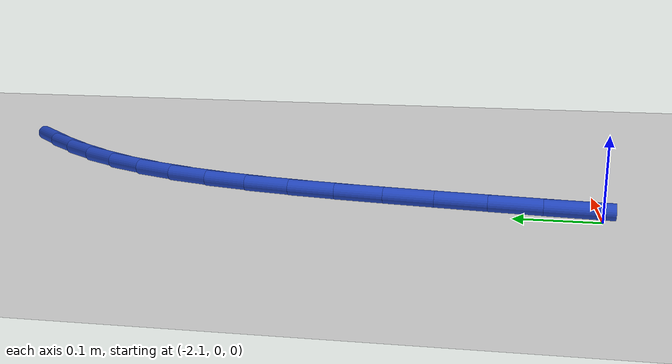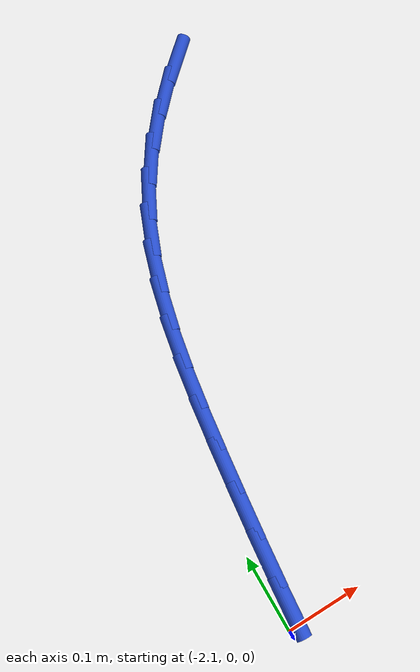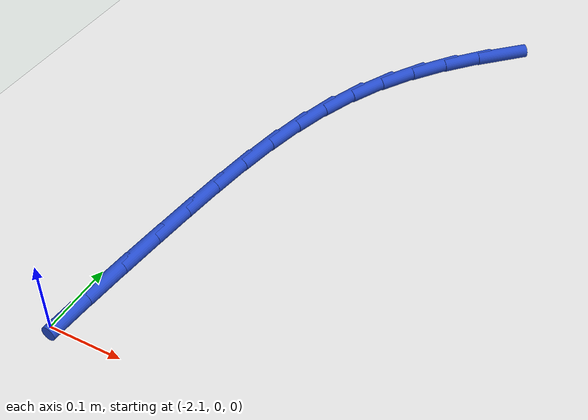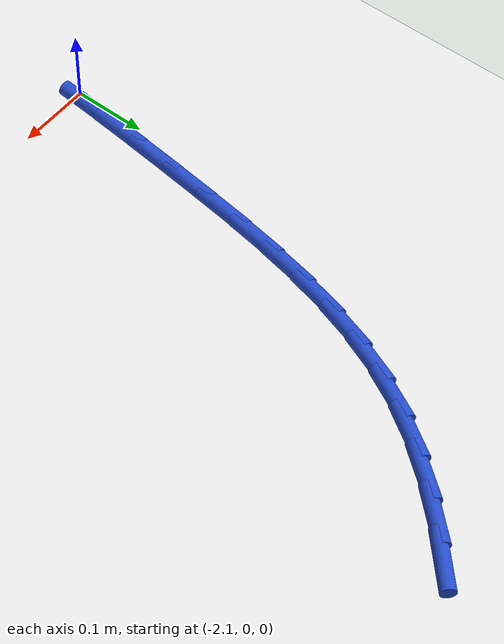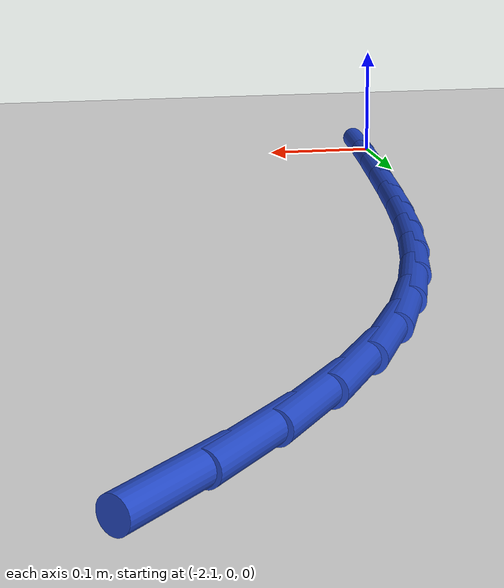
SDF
<sdf version="1.6">
 <world name="default">
  <model name="ground_plane">
   <static>1</static>
   <link name="link">
    <collision name="collision">
     <geometry><plane><normal>0 0 1</normal><size>100 100</size></plane></geometry>
     <surface><friction><ode><mu>100</mu><mu2>50</mu2></ode></friction></surface>
    </collision>
    <visual name="visual">
     <cast_shadows>0</cast_shadows>
     <geometry><plane><normal>0 0 1</normal><size>100 100</size></plane></geometry>
     <material>
      <script><uri>file://media/materials/scripts/gazebo.material</uri><name>Gazebo/WhiteGlow</name></script>
     </material>
    </visual>
   </link>
  </model>
  <model name="line">
   <link name="link_46">
    <pose>-1.8274480297276543 0.7579894274599085 0.01 0 1.57 0.7655861449692442</pose>
    <collision name="collision">
     <geometry><cylinder><radius>0.01</radius><length>0.08</length></cylinder></geometry>
    </collision>
    <visual name="visual">
     <material>
      <script><name>Gazebo/Blue</name><uri>file://media/materials/scripts/gazebo.material</uri></script>
     </material>
     <geometry><cylinder><radius>0.01</radius><length>0.08</length></cylinder></geometry>
    </visual>
   </link>
   <link name="link_47">
    <pose>-1.8681661808079115 0.7188535528368503 0.01 0 1.57 0.8355588054004156</pose>
    <collision name="collision">
     <geometry><cylinder><radius>0.01</radius><length>0.08</length></cylinder></geometry>
    </collision>
    <visual name="visual">
     <material>
      <script><name>Gazebo/Blue</name><uri>file://media/materials/scripts/gazebo.material</uri></script>
     </material>
     <geometry><cylinder><radius>0.01</radius><length>0.08</length></cylinder></geometry>
    </visual>
   </link>
   <link name="link_48">
    <pose>-1.9054464520120367 0.6776322883518419 0.01 0 1.57 0.9158189596621361</pose>
    <collision name="collision">
     <geometry><cylinder><radius>0.01</radius><length>0.08</length></cylinder></geometry>
    </collision>
    <visual name="visual">
     <material>
      <script><name>Gazebo/Blue</name><uri>file://media/materials/scripts/gazebo.material</uri></script>
     </material>
     <geometry><cylinder><radius>0.01</radius><length>0.08</length></cylinder></geometry>
    </visual>
   </link>
   <link name="link_49">
    <pose>-1.938792085375429 0.6342184770884384 0.01 0 1.57 1.0068150586327034</pose>
    <collision name="collision">
     <geometry><cylinder><radius>0.01</radius><length>0.08</length></cylinder></geometry>
    </collision>
    <visual name="visual">
     <material>
      <script><name>Gazebo/Blue</name><uri>file://media/materials/scripts/gazebo.material</uri></script>
     </material>
     <geometry><cylinder><radius>0.01</radius><length>0.08</length></cylinder></geometry>
    </visual>
   </link>
   <link name="link_50">
    <pose>-1.967706322933489 0.5885049621301943 0.01 0 1.57 1.1063465908723535</pose>
    <collision name="collision">
     <geometry><cylinder><radius>0.01</radius><length>0.08</length></cylinder></geometry>
    </collision>
    <visual name="visual">
     <material>
      <script><name>Gazebo/Blue</name><uri>file://media/materials/scripts/gazebo.material</uri></script>
     </material>
     <geometry><cylinder><radius>0.01</radius><length>0.08</length></cylinder></geometry>
    </visual>
   </link>
   <link name="link_51">
    <pose>-1.9918020110914298 0.5404100700506449 0.01 0 1.57 1.1992154726990087</pose>
    <collision name="collision">
     <geometry><cylinder><radius>0.01</radius><length>0.08</length></cylinder></geometry>
    </collision>
    <visual name="visual">
     <material>
      <script><name>Gazebo/Blue</name><uri>file://media/materials/scripts/gazebo.material</uri></script>
     </material>
     <geometry><cylinder><radius>0.01</radius><length>0.08</length></cylinder></geometry>
    </visual>
   </link>
   <link name="link_52">
    <pose>-2.0114361563713583 0.4900251478687182 0.01 0 1.57 1.2778464284739512</pose>
    <collision name="collision">
     <geometry><cylinder><radius>0.01</radius><length>0.08</length></cylinder></geometry>
    </collision>
    <visual name="visual">
     <material>
      <script><name>Gazebo/Blue</name><uri>file://media/materials/scripts/gazebo.material</uri></script>
     </material>
     <geometry><cylinder><radius>0.01</radius><length>0.08</length></cylinder></geometry>
    </visual>
   </link>
   <link name="link_53">
    <pose>-2.0272751576547345 0.4375134776648998 0.01 0 1.57 1.3415564436243155</pose>
    <collision name="collision">
     <geometry><cylinder><radius>0.01</radius><length>0.08</length></cylinder></geometry>
    </collision>
    <visual name="visual">
     <material>
      <script><name>Gazebo/Blue</name><uri>file://media/materials/scripts/gazebo.material</uri></script>
     </material>
     <geometry><cylinder><radius>0.01</radius><length>0.08</length></cylinder></geometry>
    </visual>
   </link>
   <link name="link_54">
    <pose>-2.0399864245699955 0.3830385765227174 0.01 0 1.57 1.3906126839966424</pose>
    <collision name="collision">
     <geometry><cylinder><radius>0.01</radius><length>0.08</length></cylinder></geometry>
    </collision>
    <visual name="visual">
     <material>
      <script><name>Gazebo/Blue</name><uri>file://media/materials/scripts/gazebo.material</uri></script>
     </material>
     <geometry><cylinder><radius>0.01</radius><length>0.08</length></cylinder></geometry>
    </visual>
   </link>
   <link name="link_55">
    <pose>-2.0502373667455784 0.3267639615257003 0.01 0 1.57 1.4257690935179999</pose>
    <collision name="collision">
     <geometry><cylinder><radius>0.01</radius><length>0.08</length></cylinder></geometry>
    </collision>
    <visual name="visual">
     <material>
      <script><name>Gazebo/Blue</name><uri>file://media/materials/scripts/gazebo.material</uri></script>
     </material>
     <geometry><cylinder><radius>0.01</radius><length>0.08</length></cylinder></geometry>
    </visual>
   </link>
   <link name="link_56">
    <pose>-2.0586953938099204 0.2688531497573761 0.01 0 1.57 1.447940746804815</pose>
    <collision name="collision">
     <geometry><cylinder><radius>0.01</radius><length>0.08</length></cylinder></geometry>
    </collision>
    <visual name="visual">
     <material>
      <script><name>Gazebo/Blue</name><uri>file://media/materials/scripts/gazebo.material</uri></script>
     </material>
     <geometry><cylinder><radius>0.01</radius><length>0.08</length></cylinder></geometry>
    </visual>
   </link>
   <link name="link_57">
    <pose>-2.0660279153914596 0.20946965830127423 0.01 0 1.57 1.4583715650242575</pose>
    <collision name="collision">
     <geometry><cylinder><radius>0.01</radius><length>0.08</length></cylinder></geometry>
    </collision>
    <visual name="visual">
     <material>
      <script><name>Gazebo/Blue</name><uri>file://media/materials/scripts/gazebo.material</uri></script>
     </material>
     <geometry><cylinder><radius>0.01</radius><length>0.08</length></cylinder></geometry>
    </visual>
   </link>
   <link name="link_58">
    <pose>-2.0728797339653995 0.14878083268866862 0.01 0 1.57 1.4653344945411784</pose>
    <collision name="collision">
     <geometry><cylinder><radius>0.01</radius><length>0.08</length></cylinder></geometry>
    </collision>
    <visual name="visual">
     <material>
      <script><name>Gazebo/Blue</name><uri>file://media/materials/scripts/gazebo.material</uri></script>
     </material>
     <geometry><cylinder><radius>0.01</radius><length>0.08</length></cylinder></geometry>
    </visual>
   </link>
   <link name="link_59">
    <pose>-2.0794157825203476 0.08703528278499471 0.01 0 1.57 1.4762171106184223</pose>
    <collision name="collision">
     <geometry><cylinder><radius>0.01</radius><length>0.08</length></cylinder></geometry>
    </collision>
    <visual name="visual">
     <material>
      <script><name>Gazebo/Blue</name><uri>file://media/materials/scripts/gazebo.material</uri></script>
     </material>
     <geometry><cylinder><radius>0.01</radius><length>0.08</length></cylinder></geometry>
    </visual>
   </link>
   <link name="link_60">
    <pose>-2.085342396026968 0.02455928053593082 0.01 0 1.57 1.4913614689151324</pose>
    <collision name="collision">
     <geometry><cylinder><radius>0.01</radius><length>0.08</length></cylinder></geometry>
    </collision>
    <visual name="visual">
     <material>
      <script><name>Gazebo/Blue</name><uri>file://media/materials/scripts/gazebo.material</uri></script>
     </material>
     <geometry><cylinder><radius>0.01</radius><length>0.08</length></cylinder></geometry>
    </visual>
   </link>
  </model>
 </world>
</sdf>
